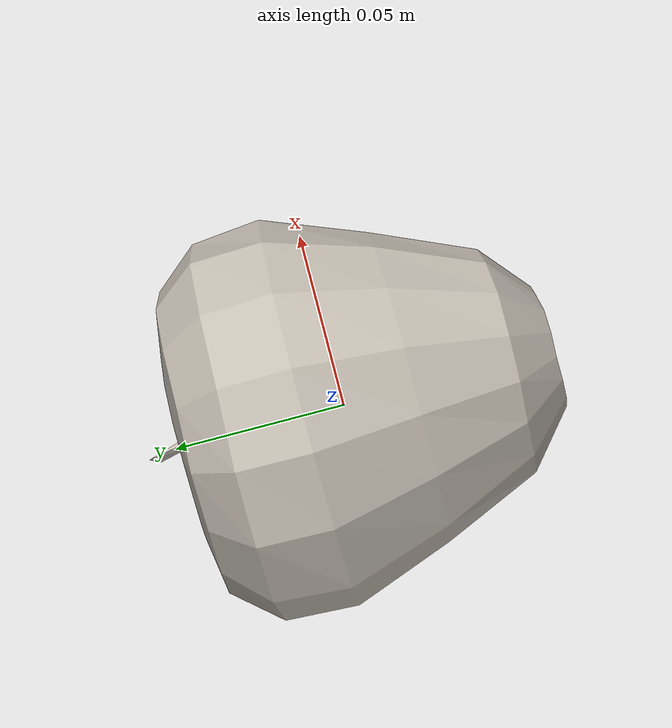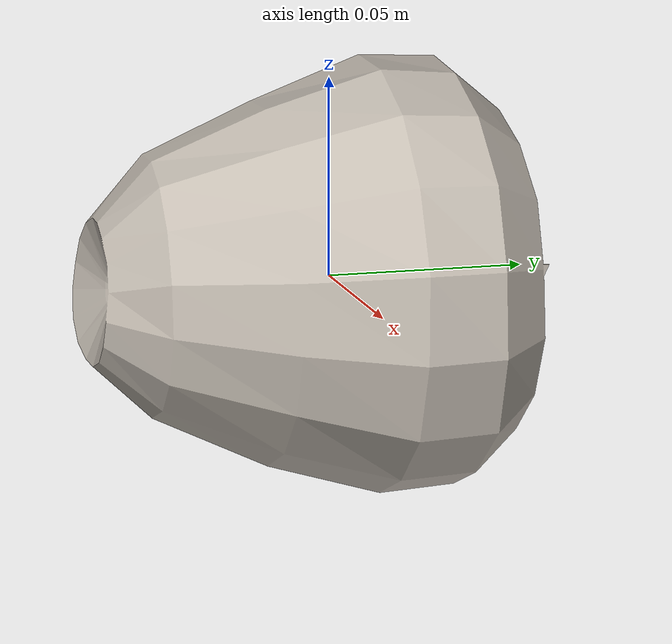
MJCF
<mujoco model="Apple_3">
  <compiler autolimits="true" boundmass="0.01" angle="radian"/>
  <default>
    <default class="/">
      <default class="__VISUAL_MJT__">
        <geom contype="0" conaffinity="0" group="0"/>
      </default>
      <default class="__STRUCTURAL_MJT__">
        <geom contype="8" conaffinity="15" group="4" friction="0.90000000000000002 0.90000000000000002 0.001" solref="0.025000000000000001 1" solimp="0.998 0.998 0.001"/>
      </default>
      <default class="__DYNAMIC_MJT__">
        <geom contype="1" conaffinity="15" group="4" friction="0.90000000000000002 0.90000000000000002 0.001" solref="0.025000000000000001 1" solimp="0.998 0.998 0.001"/>
      </default>
    </default>
  </default>
  <asset>
    <texture name="Apple1_Mat3" type="2d" file="Apple1_AlbedoTransparency3.png"/>
    <material name="material_Apple1_Mat3" class="/" texture="Apple1_Mat3" specular="0.5" shininess="0.5" rgba="1 1 1 1"/>
    <mesh name="Apple_3_apple_a3" class="/" file="Apple_3_apple_a3/Apple_3_apple_a3.obj" scale="1 1 1"/>
  </asset>
  <worldbody>
    <body name="Apple_3">
      <joint name="Apple_3_free" class="/" type="free" pos="0 0 0" axis="0 0 1" stiffness="0" range="0 0" armature="0" damping="0.10000000000000001" frictionloss="0"/>
      <body name="Apple_3_apple_a3" pos="-0 -0.012999999999999999 0" quat="1 0 0 0">
        <geom name="Apple_3_apple_a3" class="__VISUAL_MJT__" type="mesh" material="material_Apple1_Mat3" shellinertia="false" mesh="Apple_3_apple_a3"/>
        <geom name="Apple_3_PrimitiveCollider_0" class="__DYNAMIC_MJT__" type="capsule" size="0.057274021208286285 0.0066581219434738159" rgba="0 1 0 1" pos="-0 0.013000000268220901 0" quat="0.70710678118654757 0.70710678118654746 0 0"/>
      </body>
    </body>
  </worldbody>
</mujoco>
